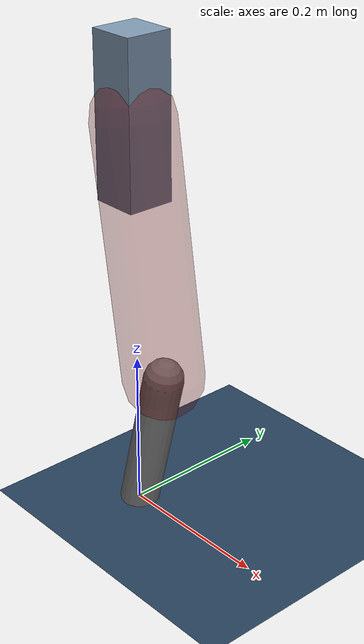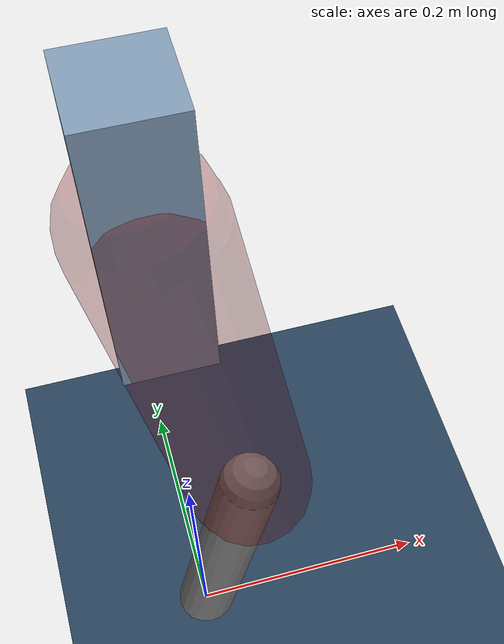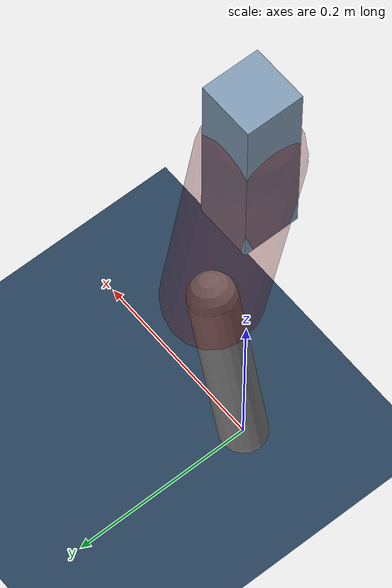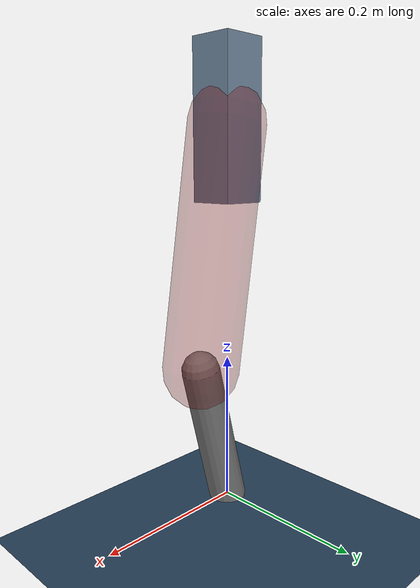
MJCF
<mujoco model="Hopper2D">
	<compiler inertiafromgeom="true" angle="radian" />
	<option timestep="0.001" integrator="implicit" cone="elliptic" solver="Newton" tolerance="1e-10" />

	<default>
		<geom contype="1" conaffinity="1" condim="3" friction="2 0.005 0.0001" solref="0.005 1" />
		<joint limited="true" damping="0.1" />
	</default>

	<asset>
		<texture name="skybox" type="skybox" builtin="gradient" rgb1=".4 .6 .8" rgb2="0 0 0" width="800" height="800" />
		<texture name="grid" type="2d" builtin="checker" rgb1=".1 .2 .3" rgb2=".2 .3 .4" width="300" height="300" mark="edge" markrgb=".2 .3 .4" />
		<material name="ground" texture="grid" texrepeat="1 1" texuniform="true" reflectance="0.1" />
		<material name="leg" rgba="0.5 0.6 0.7 1" />
	</asset>

	<worldbody>

		<geom name="floor" type="plane" size="5 5 0.25" material="ground" />

		<light directional="false" diffuse="0.8 0.8 0.8" specular="0.3 0.3 0.3" pos="0 0 2" dir="0 0 -1" />
		<light mode="targetbodycom" target="base" directional="false" diffuse="0.8 0.8 0.8" specular="0.3 0.3 0.3" pos="0 0 2" dir="0 0 -1" />

		<camera name="fixed" pos="0 -2 1" xyaxes="1 0 0 0 0 1" />
		<camera name="tracking" mode="trackcom" pos="0 -3 1" />

		<body name="root" pos="0 0 0.5076477129645248">
			<joint name="slide_x" type="slide" axis="1 0 0" range="-100 100" />
			<joint name="slide_z" type="slide" axis="0 0 1" range="0 10" />

			<body name="base" pos="0 0 0">
				<geom name="torso" type="box" size="0.03 0.03 0.1" mass="2.372" material="leg" />

				<body name="link1" pos="0 0 0" euler="0 1.4149752802856683 0">
					<joint type="hinge" axis="0 -1 0" pos="0 0 0" name="hinge1" limited="true" range="-3.14 3.14" stiffness="0" damping="0.1" />
					<geom name="thigh" type="capsule" fromto="0 0 0 0.317420393863579 0 0" size="0.05" rgba="0.5 0 0 0.3" mass="1.0361771028180211" />

					<body name="link2" pos="0.317420393863579 0 0" euler="0 0.4043978009490053 0">
						<joint type="hinge" axis="0 -1 0" pos="0 0 0" name="hinge2" limited="true" range="-3.14 3.14" stiffness="0" damping="0.1" />
						<geom name="shank" type="capsule" fromto="0 0 0 0.20022731910094582 0 0" size="0.025" mass="0.4010818552807566" />

					</body>
				</body>
			</body>
		</body>
	</worldbody>

	<actuator>
		<motor name="torque1" joint="hinge1" ctrlrange="-69.08491015825794 69.08491015825794" ctrllimited="true" gear="1" />
		<motor name="torque2" joint="hinge2" ctrlrange="-96.57379398882635 96.57379398882635" ctrllimited="true" gear="1" />
	</actuator>
</mujoco>
